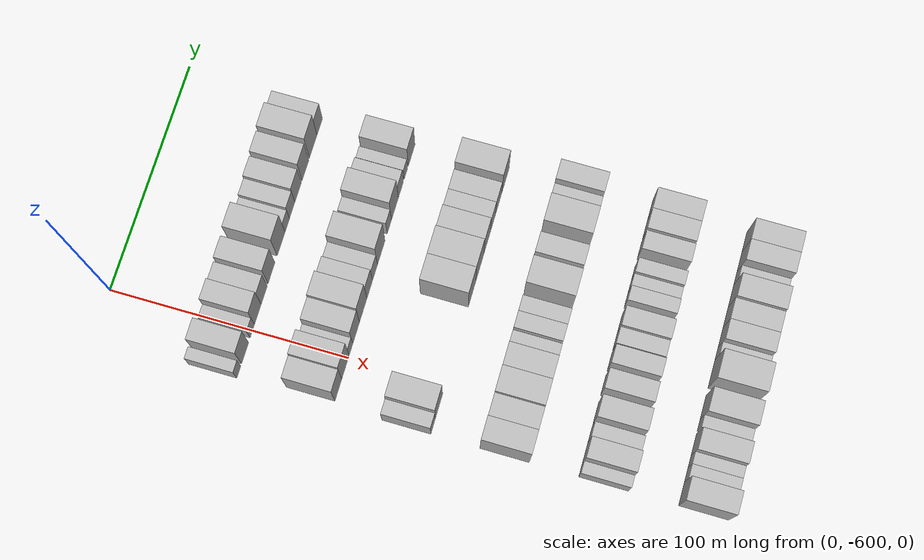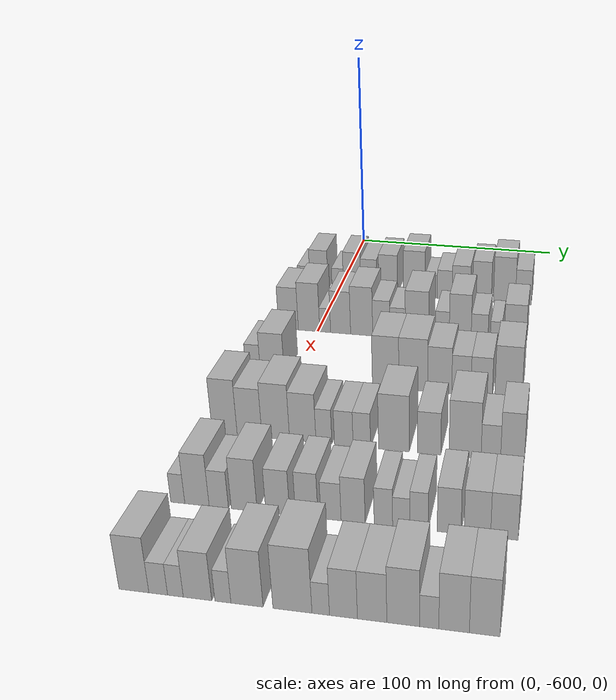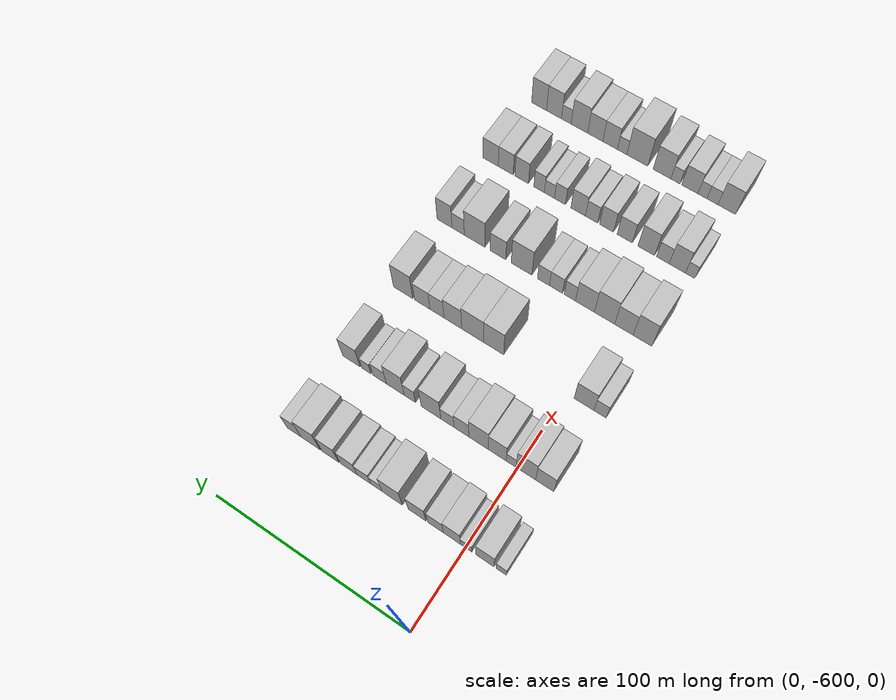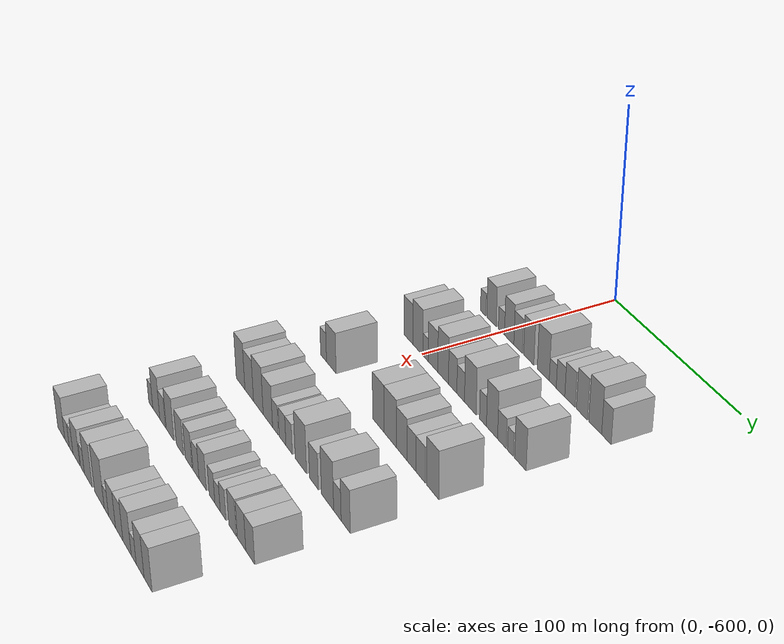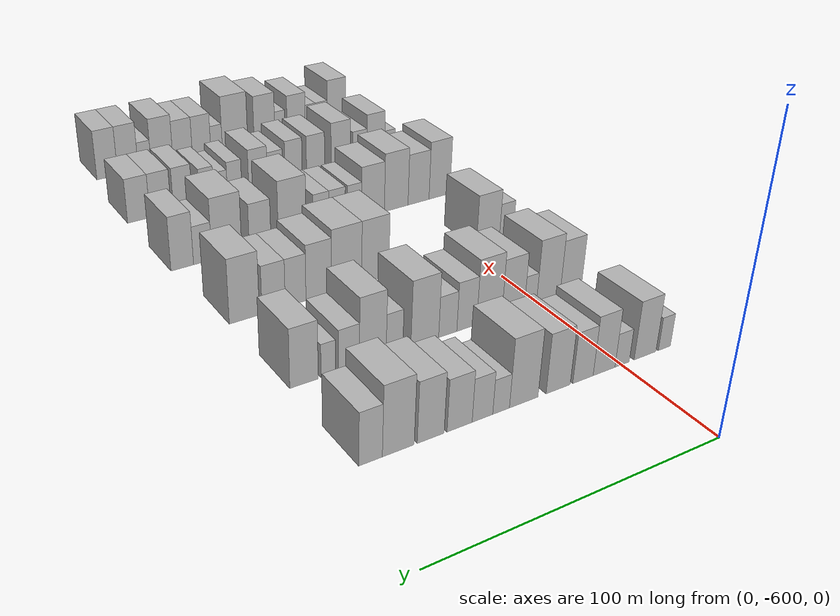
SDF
<sdf version="1.6">
 <world name="default">
  <model name="building_1">
   <static>1</static>
   <pose>50.0000 -617.4939 0 0.000000 0.000000 0.000000</pose>
   <link name="link">
    <pose>0 0 6.00 0 0 0</pose>
    <collision name="collision"><geometry><box><size>20.0000 5.0123 12.0000</size></box></geometry></collision>
    <visual name="visual">
     <cast_shadows>0</cast_shadows>
     <geometry><box><size>20.0000 5.0123 12.0000</size></box></geometry>
     <material>
      <script>
       <uri>model://HANNAS_wall/materials/scripts</uri>
       <uri>model://HANNAS_wall/materials/textures</uri>
       <name>vrc/HANNAS_wall</name>
      </script>
     </material>
    </visual>
   </link>
  </model>
  <model name="building_2">
   <static>1</static>
   <pose>50.0000 -609.5214 0 0.000000 0.000000 0.000000</pose>
   <link name="link">
    <pose>0 0 10.50 0 0 0</pose>
    <collision name="collision"><geometry><box><size>20.0000 8.9326 21.0000</size></box></geometry></collision>
    <visual name="visual">
     <cast_shadows>0</cast_shadows>
     <geometry><box><size>20.0000 8.9326 21.0000</size></box></geometry>
     <material>
      <script>
       <uri>model://HANNAS_wall/materials/scripts</uri>
       <uri>model://HANNAS_wall/materials/textures</uri>
       <name>vrc/HANNAS_wall</name>
      </script>
     </material>
    </visual>
   </link>
  </model>
  <model name="building_3">
   <static>1</static>
   <pose>50.0000 -600.2050 0 0.000000 0.000000 0.000000</pose>
   <link name="link">
    <pose>0 0 6.00 0 0 0</pose>
    <collision name="collision"><geometry><box><size>20.0000 5.7003 12.0000</size></box></geometry></collision>
    <visual name="visual">
     <cast_shadows>0</cast_shadows>
     <geometry><box><size>20.0000 5.7003 12.0000</size></box></geometry>
     <material>
      <script>
       <uri>model://HANNAS_wall/materials/scripts</uri>
       <uri>model://HANNAS_wall/materials/textures</uri>
       <name>vrc/HANNAS_wall</name>
      </script>
     </material>
    </visual>
   </link>
  </model>
  <model name="building_4">
   <static>1</static>
   <pose>50.0000 -593.0694 0 0.000000 0.000000 0.000000</pose>
   <link name="link">
    <pose>0 0 10.50 0 0 0</pose>
    <collision name="collision"><geometry><box><size>20.0000 8.5710 21.0000</size></box></geometry></collision>
    <visual name="visual">
     <cast_shadows>0</cast_shadows>
     <geometry><box><size>20.0000 8.5710 21.0000</size></box></geometry>
     <material>
      <script>
       <uri>model://HANNAS_wall/materials/scripts</uri>
       <uri>model://HANNAS_wall/materials/textures</uri>
       <name>vrc/HANNAS_wall</name>
      </script>
     </material>
    </visual>
   </link>
  </model>
  <model name="building_5">
   <static>1</static>
   <pose>50.0000 -584.8639 0 0.000000 0.000000 0.000000</pose>
   <link name="link">
    <pose>0 0 9.00 0 0 0</pose>
    <collision name="collision"><geometry><box><size>20.0000 7.8400 18.0000</size></box></geometry></collision>
    <visual name="visual">
     <cast_shadows>0</cast_shadows>
     <geometry><box><size>20.0000 7.8400 18.0000</size></box></geometry>
     <material>
      <script>
       <uri>model://HANNAS_wall/materials/scripts</uri>
       <uri>model://HANNAS_wall/materials/textures</uri>
       <name>vrc/HANNAS_wall</name>
      </script>
     </material>
    </visual>
   </link>
  </model>
  <model name="building_6">
   <static>1</static>
   <pose>50.0000 -575.4095 0 0.000000 0.000000 0.000000</pose>
   <link name="link">
    <pose>0 0 10.50 0 0 0</pose>
    <collision name="collision"><geometry><box><size>20.0000 9.0687 21.0000</size></box></geometry></collision>
    <visual name="visual">
     <cast_shadows>0</cast_shadows>
     <geometry><box><size>20.0000 9.0687 21.0000</size></box></geometry>
     <material>
      <script>
       <uri>model://HANNAS_wall/materials/scripts</uri>
       <uri>model://HANNAS_wall/materials/textures</uri>
       <name>vrc/HANNAS_wall</name>
      </script>
     </material>
    </visual>
   </link>
  </model>
  <model name="building_7">
   <static>1</static>
   <pose>50.0000 -562.6782 0 0.000000 0.000000 0.000000</pose>
   <link name="link">
    <pose>0 0 12.00 0 0 0</pose>
    <collision name="collision"><geometry><box><size>20.0000 10.3939 24.0000</size></box></geometry></collision>
    <visual name="visual">
     <cast_shadows>0</cast_shadows>
     <geometry><box><size>20.0000 10.3939 24.0000</size></box></geometry>
     <material>
      <script>
       <uri>model://HANNAS_wall/materials/scripts</uri>
       <uri>model://HANNAS_wall/materials/textures</uri>
       <name>vrc/HANNAS_wall</name>
      </script>
     </material>
    </visual>
   </link>
  </model>
  <model name="building_8">
   <static>1</static>
   <pose>50.0000 -554.5004 0 0.000000 0.000000 0.000000</pose>
   <link name="link">
    <pose>0 0 6.00 0 0 0</pose>
    <collision name="collision"><geometry><box><size>20.0000 5.9615 12.0000</size></box></geometry></collision>
    <visual name="visual">
     <cast_shadows>0</cast_shadows>
     <geometry><box><size>20.0000 5.9615 12.0000</size></box></geometry>
     <material>
      <script>
       <uri>model://HANNAS_wall/materials/scripts</uri>
       <uri>model://HANNAS_wall/materials/textures</uri>
       <name>vrc/HANNAS_wall</name>
      </script>
     </material>
    </visual>
   </link>
  </model>
  <model name="building_9">
   <static>1</static>
   <pose>50.0000 -547.9078 0 0.000000 0.000000 0.000000</pose>
   <link name="link">
    <pose>0 0 7.50 0 0 0</pose>
    <collision name="collision"><geometry><box><size>20.0000 7.2238 15.0000</size></box></geometry></collision>
    <visual name="visual">
     <cast_shadows>0</cast_shadows>
     <geometry><box><size>20.0000 7.2238 15.0000</size></box></geometry>
     <material>
      <script>
       <uri>model://HANNAS_wall/materials/scripts</uri>
       <uri>model://HANNAS_wall/materials/textures</uri>
       <name>vrc/HANNAS_wall</name>
      </script>
     </material>
    </visual>
   </link>
  </model>
  <model name="building_10">
   <static>1</static>
   <pose>50.0000 -539.9835 0 0.000000 0.000000 0.000000</pose>
   <link name="link">
    <pose>0 0 9.00 0 0 0</pose>
    <collision name="collision"><geometry><box><size>20.0000 8.6247 18.0000</size></box></geometry></collision>
    <visual name="visual">
     <cast_shadows>0</cast_shadows>
     <geometry><box><size>20.0000 8.6247 18.0000</size></box></geometry>
     <material>
      <script>
       <uri>model://HANNAS_wall/materials/scripts</uri>
       <uri>model://HANNAS_wall/materials/textures</uri>
       <name>vrc/HANNAS_wall</name>
      </script>
     </material>
    </visual>
   </link>
  </model>
  <model name="building_11">
   <static>1</static>
   <pose>50.0000 -530.1715 0 0.000000 0.000000 0.000000</pose>
   <link name="link">
    <pose>0 0 10.50 0 0 0</pose>
    <collision name="collision"><geometry><box><size>20.0000 8.9995 21.0000</size></box></geometry></collision>
    <visual name="visual">
     <cast_shadows>0</cast_shadows>
     <geometry><box><size>20.0000 8.9995 21.0000</size></box></geometry>
     <material>
      <script>
       <uri>model://HANNAS_wall/materials/scripts</uri>
       <uri>model://HANNAS_wall/materials/textures</uri>
       <name>vrc/HANNAS_wall</name>
      </script>
     </material>
    </visual>
   </link>
  </model>
  <model name="building_12">
   <static>1</static>
   <pose>50.0000 -519.4981 0 0.000000 0.000000 0.000000</pose>
   <link name="link">
    <pose>0 0 12.00 0 0 0</pose>
    <collision name="collision"><geometry><box><size>20.0000 10.3472 24.0000</size></box></geometry></collision>
    <visual name="visual">
     <cast_shadows>0</cast_shadows>
     <geometry><box><size>20.0000 10.3472 24.0000</size></box></geometry>
     <material>
      <script>
       <uri>model://HANNAS_wall/materials/scripts</uri>
       <uri>model://HANNAS_wall/materials/textures</uri>
       <name>vrc/HANNAS_wall</name>
      </script>
     </material>
    </visual>
   </link>
  </model>
  <model name="building_13">
   <static>1</static>
   <pose>50.0000 -510.5609 0 0.000000 0.000000 0.000000</pose>
   <link name="link">
    <pose>0 0 9.00 0 0 0</pose>
    <collision name="collision"><geometry><box><size>20.0000 7.5273 18.0000</size></box></geometry></collision>
    <visual name="visual">
     <cast_shadows>0</cast_shadows>
     <geometry><box><size>20.0000 7.5273 18.0000</size></box></geometry>
     <material>
      <script>
       <uri>model://HANNAS_wall/materials/scripts</uri>
       <uri>model://HANNAS_wall/materials/textures</uri>
       <name>vrc/HANNAS_wall</name>
      </script>
     </material>
    </visual>
   </link>
  </model>
  <model name="building_145">
   <static>1</static>
   <pose>90.0000 -613.4440 0 0.000000 0.000000 0.000000</pose>
   <link name="link">
    <pose>0 0 10.50 0 0 0</pose>
    <collision name="collision"><geometry><box><size>20.0000 9.1120 21.0000</size></box></geometry></collision>
    <visual name="visual">
     <cast_shadows>0</cast_shadows>
     <geometry><box><size>20.0000 9.1120 21.0000</size></box></geometry>
     <material>
      <script>
       <uri>model://HANNAS_wall/materials/scripts</uri>
       <uri>model://HANNAS_wall/materials/textures</uri>
       <name>vrc/HANNAS_wall</name>
      </script>
     </material>
    </visual>
   </link>
  </model>
  <model name="building_146">
   <static>1</static>
   <pose>90.0000 -603.9384 0 0.000000 0.000000 0.000000</pose>
   <link name="link">
    <pose>0 0 12.00 0 0 0</pose>
    <collision name="collision"><geometry><box><size>20.0000 9.8993 24.0000</size></box></geometry></collision>
    <visual name="visual">
     <cast_shadows>0</cast_shadows>
     <geometry><box><size>20.0000 9.8993 24.0000</size></box></geometry>
     <material>
      <script>
       <uri>model://HANNAS_wall/materials/scripts</uri>
       <uri>model://HANNAS_wall/materials/textures</uri>
       <name>vrc/HANNAS_wall</name>
      </script>
     </material>
    </visual>
   </link>
  </model>
  <model name="building_147">
   <static>1</static>
   <pose>90.0000 -596.4948 0 0.000000 0.000000 0.000000</pose>
   <link name="link">
    <pose>0 0 6.00 0 0 0</pose>
    <collision name="collision"><geometry><box><size>20.0000 4.9878 12.0000</size></box></geometry></collision>
    <visual name="visual">
     <cast_shadows>0</cast_shadows>
     <geometry><box><size>20.0000 4.9878 12.0000</size></box></geometry>
     <material>
      <script>
       <uri>model://HANNAS_wall/materials/scripts</uri>
       <uri>model://HANNAS_wall/materials/textures</uri>
       <name>vrc/HANNAS_wall</name>
      </script>
     </material>
    </visual>
   </link>
  </model>
  <model name="building_148">
   <static>1</static>
   <pose>90.0000 -589.4309 0 0.000000 0.000000 0.000000</pose>
   <link name="link">
    <pose>0 0 10.50 0 0 0</pose>
    <collision name="collision"><geometry><box><size>20.0000 9.1400 21.0000</size></box></geometry></collision>
    <visual name="visual">
     <cast_shadows>0</cast_shadows>
     <geometry><box><size>20.0000 9.1400 21.0000</size></box></geometry>
     <material>
      <script>
       <uri>model://HANNAS_wall/materials/scripts</uri>
       <uri>model://HANNAS_wall/materials/textures</uri>
       <name>vrc/HANNAS_wall</name>
      </script>
     </material>
    </visual>
   </link>
  </model>
  <model name="building_149">
   <static>1</static>
   <pose>90.0000 -579.8406 0 0.000000 0.000000 0.000000</pose>
   <link name="link">
    <pose>0 0 12.00 0 0 0</pose>
    <collision name="collision"><geometry><box><size>20.0000 10.0407 24.0000</size></box></geometry></collision>
    <visual name="visual">
     <cast_shadows>0</cast_shadows>
     <geometry><box><size>20.0000 10.0407 24.0000</size></box></geometry>
     <material>
      <script>
       <uri>model://HANNAS_wall/materials/scripts</uri>
       <uri>model://HANNAS_wall/materials/textures</uri>
       <name>vrc/HANNAS_wall</name>
      </script>
     </material>
    </visual>
   </link>
  </model>
  <model name="building_150">
   <static>1</static>
   <pose>90.0000 -570.9561 0 0.000000 0.000000 0.000000</pose>
   <link name="link">
    <pose>0 0 9.00 0 0 0</pose>
    <collision name="collision"><geometry><box><size>20.0000 7.7282 18.0000</size></box></geometry></collision>
    <visual name="visual">
     <cast_shadows>0</cast_shadows>
     <geometry><box><size>20.0000 7.7282 18.0000</size></box></geometry>
     <material>
      <script>
       <uri>model://HANNAS_wall/materials/scripts</uri>
       <uri>model://HANNAS_wall/materials/textures</uri>
       <name>vrc/HANNAS_wall</name>
      </script>
     </material>
    </visual>
   </link>
  </model>
  <model name="building_151">
   <static>1</static>
   <pose>90.0000 -563.6088 0 0.000000 0.000000 0.000000</pose>
   <link name="link">
    <pose>0 0 7.50 0 0 0</pose>
    <collision name="collision"><geometry><box><size>20.0000 6.9663 15.0000</size></box></geometry></collision>
    <visual name="visual">
     <cast_shadows>0</cast_shadows>
     <geometry><box><size>20.0000 6.9663 15.0000</size></box></geometry>
     <material>
      <script>
       <uri>model://HANNAS_wall/materials/scripts</uri>
       <uri>model://HANNAS_wall/materials/textures</uri>
       <name>vrc/HANNAS_wall</name>
      </script>
     </material>
    </visual>
   </link>
  </model>
  <model name="building_152">
   <static>1</static>
   <pose>90.0000 -554.9083 0 0.000000 0.000000 0.000000</pose>
   <link name="link">
    <pose>0 0 12.00 0 0 0</pose>
    <collision name="collision"><geometry><box><size>20.0000 10.4348 24.0000</size></box></geometry></collision>
    <visual name="visual">
     <cast_shadows>0</cast_shadows>
     <geometry><box><size>20.0000 10.4348 24.0000</size></box></geometry>
     <material>
      <script>
       <uri>model://HANNAS_wall/materials/scripts</uri>
       <uri>model://HANNAS_wall/materials/textures</uri>
       <name>vrc/HANNAS_wall</name>
      </script>
     </material>
    </visual>
   </link>
  </model>
  <model name="building_153">
   <static>1</static>
   <pose>90.0000 -543.6479 0 0.000000 0.000000 0.000000</pose>
   <link name="link">
    <pose>0 0 7.50 0 0 0</pose>
    <collision name="collision"><geometry><box><size>20.0000 6.0859 15.0000</size></box></geometry></collision>
    <visual name="visual">
     <cast_shadows>0</cast_shadows>
     <geometry><box><size>20.0000 6.0859 15.0000</size></box></geometry>
     <material>
      <script>
       <uri>model://HANNAS_wall/materials/scripts</uri>
       <uri>model://HANNAS_wall/materials/textures</uri>
       <name>vrc/HANNAS_wall</name>
      </script>
     </material>
    </visual>
   </link>
  </model>
  <model name="building_154">
   <static>1</static>
   <pose>90.0000 -535.7948 0 0.000000 0.000000 0.000000</pose>
   <link name="link">
    <pose>0 0 12.00 0 0 0</pose>
    <collision name="collision"><geometry><box><size>20.0000 9.6202 24.0000</size></box></geometry></collision>
    <visual name="visual">
     <cast_shadows>0</cast_shadows>
     <geometry><box><size>20.0000 9.6202 24.0000</size></box></geometry>
     <material>
      <script>
       <uri>model://HANNAS_wall/materials/scripts</uri>
       <uri>model://HANNAS_wall/materials/textures</uri>
       <name>vrc/HANNAS_wall</name>
      </script>
     </material>
    </visual>
   </link>
  </model>
  <model name="building_155">
   <static>1</static>
   <pose>90.0000 -527.2983 0 0.000000 0.000000 0.000000</pose>
   <link name="link">
    <pose>0 0 7.50 0 0 0</pose>
    <collision name="collision"><geometry><box><size>20.0000 7.3729 15.0000</size></box></geometry></collision>
    <visual name="visual">
     <cast_shadows>0</cast_shadows>
     <geometry><box><size>20.0000 7.3729 15.0000</size></box></geometry>
     <material>
      <script>
       <uri>model://HANNAS_wall/materials/scripts</uri>
       <uri>model://HANNAS_wall/materials/textures</uri>
       <name>vrc/HANNAS_wall</name>
      </script>
     </material>
    </visual>
   </link>
  </model>
  <model name="building_156">
   <static>1</static>
   <pose>90.0000 -520.1170 0 0.000000 0.000000 0.000000</pose>
   <link name="link">
    <pose>0 0 6.00 0 0 0</pose>
    <collision name="collision"><geometry><box><size>20.0000 4.9897 12.0000</size></box></geometry></collision>
    <visual name="visual">
     <cast_shadows>0</cast_shadows>
     <geometry><box><size>20.0000 4.9897 12.0000</size></box></geometry>
     <material>
      <script>
       <uri>model://HANNAS_wall/materials/scripts</uri>
       <uri>model://HANNAS_wall/materials/textures</uri>
       <name>vrc/HANNAS_wall</name>
      </script>
     </material>
    </visual>
   </link>
  </model>
  <model name="building_157">
   <static>1</static>
   <pose>90.0000 -511.8347 0 0.000000 0.000000 0.000000</pose>
   <link name="link">
    <pose>0 0 10.50 0 0 0</pose>
    <collision name="collision"><geometry><box><size>20.0000 9.5747 21.0000</size></box></geometry></collision>
    <visual name="visual">
     <cast_shadows>0</cast_shadows>
     <geometry><box><size>20.0000 9.5747 21.0000</size></box></geometry>
     <material>
      <script>
       <uri>model://HANNAS_wall/materials/scripts</uri>
       <uri>model://HANNAS_wall/materials/textures</uri>
       <name>vrc/HANNAS_wall</name>
      </script>
     </material>
    </visual>
   </link>
  </model>
  <model name="building_282">
   <static>1</static>
   <pose>130.0000 -616.8885 0 0.000000 0.000000 0.000000</pose>
   <link name="link">
    <pose>0 0 7.50 0 0 0</pose>
    <collision name="collision"><geometry><box><size>20.0000 6.2229 15.0000</size></box></geometry></collision>
    <visual name="visual">
     <cast_shadows>0</cast_shadows>
     <geometry><box><size>20.0000 6.2229 15.0000</size></box></geometry>
     <material>
      <script>
       <uri>model://HANNAS_wall/materials/scripts</uri>
       <uri>model://HANNAS_wall/materials/textures</uri>
       <name>vrc/HANNAS_wall</name>
      </script>
     </material>
    </visual>
   </link>
  </model>
  <model name="building_283">
   <static>1</static>
   <pose>130.0000 -608.7078 0 0.000000 0.000000 0.000000</pose>
   <link name="link">
    <pose>0 0 10.50 0 0 0</pose>
    <collision name="collision"><geometry><box><size>20.0000 10.1385 21.0000</size></box></geometry></collision>
    <visual name="visual">
     <cast_shadows>0</cast_shadows>
     <geometry><box><size>20.0000 10.1385 21.0000</size></box></geometry>
     <material>
      <script>
       <uri>model://HANNAS_wall/materials/scripts</uri>
       <uri>model://HANNAS_wall/materials/textures</uri>
       <name>vrc/HANNAS_wall</name>
      </script>
     </material>
    </visual>
   </link>
  </model>
  <model name="building_284">
   <static>1</static>
   <pose>130.0000 -561.3183 0 0.000000 0.000000 0.000000</pose>
   <link name="link">
    <pose>0 0 12.00 0 0 0</pose>
    <collision name="collision"><geometry><box><size>20.0000 10.8802 24.0000</size></box></geometry></collision>
    <visual name="visual">
     <cast_shadows>0</cast_shadows>
     <geometry><box><size>20.0000 10.8802 24.0000</size></box></geometry>
     <material>
      <script>
       <uri>model://HANNAS_wall/materials/scripts</uri>
       <uri>model://HANNAS_wall/materials/textures</uri>
       <name>vrc/HANNAS_wall</name>
      </script>
     </material>
    </visual>
   </link>
  </model>
  <model name="building_285">
   <static>1</static>
   <pose>130.0000 -550.0125 0 0.000000 0.000000 0.000000</pose>
   <link name="link">
    <pose>0 0 12.00 0 0 0</pose>
    <collision name="collision"><geometry><box><size>20.0000 11.7315 24.0000</size></box></geometry></collision>
    <visual name="visual">
     <cast_shadows>0</cast_shadows>
     <geometry><box><size>20.0000 11.7315 24.0000</size></box></geometry>
     <material>
      <script>
       <uri>model://HANNAS_wall/materials/scripts</uri>
       <uri>model://HANNAS_wall/materials/textures</uri>
       <name>vrc/HANNAS_wall</name>
      </script>
     </material>
    </visual>
   </link>
  </model>
  <model name="building_286">
   <static>1</static>
   <pose>130.0000 -539.2736 0 0.000000 0.000000 0.000000</pose>
   <link name="link">
    <pose>0 0 10.50 0 0 0</pose>
    <collision name="collision"><geometry><box><size>20.0000 9.7465 21.0000</size></box></geometry></collision>
    <visual name="visual">
     <cast_shadows>0</cast_shadows>
     <geometry><box><size>20.0000 9.7465 21.0000</size></box></geometry>
     <material>
      <script>
       <uri>model://HANNAS_wall/materials/scripts</uri>
       <uri>model://HANNAS_wall/materials/textures</uri>
       <name>vrc/HANNAS_wall</name>
      </script>
     </material>
    </visual>
   </link>
  </model>
  <model name="building_287">
   <static>1</static>
   <pose>130.0000 -530.5337 0 0.000000 0.000000 0.000000</pose>
   <link name="link">
    <pose>0 0 9.00 0 0 0</pose>
    <collision name="collision"><geometry><box><size>20.0000 7.7333 18.0000</size></box></geometry></collision>
    <visual name="visual">
     <cast_shadows>0</cast_shadows>
     <geometry><box><size>20.0000 7.7333 18.0000</size></box></geometry>
     <material>
      <script>
       <uri>model://HANNAS_wall/materials/scripts</uri>
       <uri>model://HANNAS_wall/materials/textures</uri>
       <name>vrc/HANNAS_wall</name>
      </script>
     </material>
    </visual>
   </link>
  </model>
  <model name="building_288">
   <static>1</static>
   <pose>130.0000 -522.4168 0 0.000000 0.000000 0.000000</pose>
   <link name="link">
    <pose>0 0 9.00 0 0 0</pose>
    <collision name="collision"><geometry><box><size>20.0000 8.5005 18.0000</size></box></geometry></collision>
    <visual name="visual">
     <cast_shadows>0</cast_shadows>
     <geometry><box><size>20.0000 8.5005 18.0000</size></box></geometry>
     <material>
      <script>
       <uri>model://HANNAS_wall/materials/scripts</uri>
       <uri>model://HANNAS_wall/materials/textures</uri>
       <name>vrc/HANNAS_wall</name>
      </script>
     </material>
    </visual>
   </link>
  </model>
  <model name="building_289">
   <static>1</static>
   <pose>130.0000 -511.7700 0 0.000000 0.000000 0.000000</pose>
   <link name="link">
    <pose>0 0 12.00 0 0 0</pose>
    <collision name="collision"><geometry><box><size>20.0000 10.7929 24.0000</size></box></geometry></collision>
    <visual name="visual">
     <cast_shadows>0</cast_shadows>
     <geometry><box><size>20.0000 10.7929 24.0000</size></box></geometry>
     <material>
      <script>
       <uri>model://HANNAS_wall/materials/scripts</uri>
       <uri>model://HANNAS_wall/materials/textures</uri>
       <name>vrc/HANNAS_wall</name>
      </script>
     </material>
    </visual>
   </link>
  </model>
  <model name="building_410">
   <static>1</static>
   <pose>170.0000 -615.1223 0 0.000000 0.000000 0.000000</pose>
   <link name="link">
    <pose>0 0 12.00 0 0 0</pose>
    <collision name="collision"><geometry><box><size>20.0000 9.7554 24.0000</size></box></geometry></collision>
    <visual name="visual">
     <cast_shadows>0</cast_shadows>
     <geometry><box><size>20.0000 9.7554 24.0000</size></box></geometry>
     <material>
      <script>
       <uri>model://HANNAS_wall/materials/scripts</uri>
       <uri>model://HANNAS_wall/materials/textures</uri>
       <name>vrc/HANNAS_wall</name>
      </script>
     </material>
    </visual>
   </link>
  </model>
  <model name="building_411">
   <static>1</static>
   <pose>170.0000 -605.4306 0 0.000000 0.000000 0.000000</pose>
   <link name="link">
    <pose>0 0 10.50 0 0 0</pose>
    <collision name="collision"><geometry><box><size>20.0000 9.6279 21.0000</size></box></geometry></collision>
    <visual name="visual">
     <cast_shadows>0</cast_shadows>
     <geometry><box><size>20.0000 9.6279 21.0000</size></box></geometry>
     <material>
      <script>
       <uri>model://HANNAS_wall/materials/scripts</uri>
       <uri>model://HANNAS_wall/materials/textures</uri>
       <name>vrc/HANNAS_wall</name>
      </script>
     </material>
    </visual>
   </link>
  </model>
  <model name="building_412">
   <static>1</static>
   <pose>170.0000 -595.2949 0 0.000000 0.000000 0.000000</pose>
   <link name="link">
    <pose>0 0 12.00 0 0 0</pose>
    <collision name="collision"><geometry><box><size>20.0000 10.6435 24.0000</size></box></geometry></collision>
    <visual name="visual">
     <cast_shadows>0</cast_shadows>
     <geometry><box><size>20.0000 10.6435 24.0000</size></box></geometry>
     <material>
      <script>
       <uri>model://HANNAS_wall/materials/scripts</uri>
       <uri>model://HANNAS_wall/materials/textures</uri>
       <name>vrc/HANNAS_wall</name>
      </script>
     </material>
    </visual>
   </link>
  </model>
  <model name="building_413">
   <static>1</static>
   <pose>170.0000 -584.9388 0 0.000000 0.000000 0.000000</pose>
   <link name="link">
    <pose>0 0 10.50 0 0 0</pose>
    <collision name="collision"><geometry><box><size>20.0000 10.0687 21.0000</size></box></geometry></collision>
    <visual name="visual">
     <cast_shadows>0</cast_shadows>
     <geometry><box><size>20.0000 10.0687 21.0000</size></box></geometry>
     <material>
      <script>
       <uri>model://HANNAS_wall/materials/scripts</uri>
       <uri>model://HANNAS_wall/materials/textures</uri>
       <name>vrc/HANNAS_wall</name>
      </script>
     </material>
    </visual>
   </link>
  </model>
  <model name="building_414">
   <static>1</static>
   <pose>170.0000 -576.8933 0 0.000000 0.000000 0.000000</pose>
   <link name="link">
    <pose>0 0 7.50 0 0 0</pose>
    <collision name="collision"><geometry><box><size>20.0000 6.0223 15.0000</size></box></geometry></collision>
    <visual name="visual">
     <cast_shadows>0</cast_shadows>
     <geometry><box><size>20.0000 6.0223 15.0000</size></box></geometry>
     <material>
      <script>
       <uri>model://HANNAS_wall/materials/scripts</uri>
       <uri>model://HANNAS_wall/materials/textures</uri>
       <name>vrc/HANNAS_wall</name>
      </script>
     </material>
    </visual>
   </link>
  </model>
  <model name="building_415">
   <static>1</static>
   <pose>170.0000 -569.3808 0 0.000000 0.000000 0.000000</pose>
   <link name="link">
    <pose>0 0 7.50 0 0 0</pose>
    <collision name="collision"><geometry><box><size>20.0000 7.0026 15.0000</size></box></geometry></collision>
    <visual name="visual">
     <cast_shadows>0</cast_shadows>
     <geometry><box><size>20.0000 7.0026 15.0000</size></box></geometry>
     <material>
      <script>
       <uri>model://HANNAS_wall/materials/scripts</uri>
       <uri>model://HANNAS_wall/materials/textures</uri>
       <name>vrc/HANNAS_wall</name>
      </script>
     </material>
    </visual>
   </link>
  </model>
  <model name="building_416">
   <static>1</static>
   <pose>170.0000 -562.5997 0 0.000000 0.000000 0.000000</pose>
   <link name="link">
    <pose>0 0 7.50 0 0 0</pose>
    <collision name="collision"><geometry><box><size>20.0000 6.5597 15.0000</size></box></geometry></collision>
    <visual name="visual">
     <cast_shadows>0</cast_shadows>
     <geometry><box><size>20.0000 6.5597 15.0000</size></box></geometry>
     <material>
      <script>
       <uri>model://HANNAS_wall/materials/scripts</uri>
       <uri>model://HANNAS_wall/materials/textures</uri>
       <name>vrc/HANNAS_wall</name>
      </script>
     </material>
    </visual>
   </link>
  </model>
  <model name="building_417">
   <static>1</static>
   <pose>170.0000 -550.6372 0 0.000000 0.000000 0.000000</pose>
   <link name="link">
    <pose>0 0 12.00 0 0 0</pose>
    <collision name="collision"><geometry><box><size>20.0000 11.3653 24.0000</size></box></geometry></collision>
    <visual name="visual">
     <cast_shadows>0</cast_shadows>
     <geometry><box><size>20.0000 11.3653 24.0000</size></box></geometry>
     <material>
      <script>
       <uri>model://HANNAS_wall/materials/scripts</uri>
       <uri>model://HANNAS_wall/materials/textures</uri>
       <name>vrc/HANNAS_wall</name>
      </script>
     </material>
    </visual>
   </link>
  </model>
  <model name="building_418">
   <static>1</static>
   <pose>170.0000 -537.6403 0 0.000000 0.000000 0.000000</pose>
   <link name="link">
    <pose>0 0 9.00 0 0 0</pose>
    <collision name="collision"><geometry><box><size>20.0000 8.6284 18.0000</size></box></geometry></collision>
    <visual name="visual">
     <cast_shadows>0</cast_shadows>
     <geometry><box><size>20.0000 8.6284 18.0000</size></box></geometry>
     <material>
      <script>
       <uri>model://HANNAS_wall/materials/scripts</uri>
       <uri>model://HANNAS_wall/materials/textures</uri>
       <name>vrc/HANNAS_wall</name>
      </script>
     </material>
    </visual>
   </link>
  </model>
  <model name="building_419">
   <static>1</static>
   <pose>170.0000 -524.5130 0 0.000000 0.000000 0.000000</pose>
   <link name="link">
    <pose>0 0 12.00 0 0 0</pose>
    <collision name="collision"><geometry><box><size>20.0000 11.6263 24.0000</size></box></geometry></collision>
    <visual name="visual">
     <cast_shadows>0</cast_shadows>
     <geometry><box><size>20.0000 11.6263 24.0000</size></box></geometry>
     <material>
      <script>
       <uri>model://HANNAS_wall/materials/scripts</uri>
       <uri>model://HANNAS_wall/materials/textures</uri>
       <name>vrc/HANNAS_wall</name>
      </script>
     </material>
    </visual>
   </link>
  </model>
  <model name="building_420">
   <static>1</static>
   <pose>170.0000 -515.1902 0 0.000000 0.000000 0.000000</pose>
   <link name="link">
    <pose>0 0 7.50 0 0 0</pose>
    <collision name="collision"><geometry><box><size>20.0000 7.0193 15.0000</size></box></geometry></collision>
    <visual name="visual">
     <cast_shadows>0</cast_shadows>
     <geometry><box><size>20.0000 7.0193 15.0000</size></box></geometry>
     <material>
      <script>
       <uri>model://HANNAS_wall/materials/scripts</uri>
       <uri>model://HANNAS_wall/materials/textures</uri>
       <name>vrc/HANNAS_wall</name>
      </script>
     </material>
    </visual>
   </link>
  </model>
  <model name="building_421">
   <static>1</static>
   <pose>170.0000 -507.4368 0 0.000000 0.000000 0.000000</pose>
   <link name="link">
    <pose>0 0 10.50 0 0 0</pose>
    <collision name="collision"><geometry><box><size>20.0000 8.4874 21.0000</size></box></geometry></collision>
    <visual name="visual">
     <cast_shadows>0</cast_shadows>
     <geometry><box><size>20.0000 8.4874 21.0000</size></box></geometry>
     <material>
      <script>
       <uri>model://HANNAS_wall/materials/scripts</uri>
       <uri>model://HANNAS_wall/materials/textures</uri>
       <name>vrc/HANNAS_wall</name>
      </script>
     </material>
    </visual>
   </link>
  </model>
  <model name="building_553">
   <static>1</static>
   <pose>210.0000 -617.5113 0 0.000000 0.000000 0.000000</pose>
   <link name="link">
    <pose>0 0 6.00 0 0 0</pose>
    <collision name="collision"><geometry><box><size>20.0000 4.9774 12.0000</size></box></geometry></collision>
    <visual name="visual">
     <cast_shadows>0</cast_shadows>
     <geometry><box><size>20.0000 4.9774 12.0000</size></box></geometry>
     <material>
      <script>
       <uri>model://HANNAS_wall/materials/scripts</uri>
       <uri>model://HANNAS_wall/materials/textures</uri>
       <name>vrc/HANNAS_wall</name>
      </script>
     </material>
    </visual>
   </link>
  </model>
  <model name="building_554">
   <static>1</static>
   <pose>210.0000 -610.7302 0 0.000000 0.000000 0.000000</pose>
   <link name="link">
    <pose>0 0 10.50 0 0 0</pose>
    <collision name="collision"><geometry><box><size>20.0000 8.5847 21.0000</size></box></geometry></collision>
    <visual name="visual">
     <cast_shadows>0</cast_shadows>
     <geometry><box><size>20.0000 8.5847 21.0000</size></box></geometry>
     <material>
      <script>
       <uri>model://HANNAS_wall/materials/scripts</uri>
       <uri>model://HANNAS_wall/materials/textures</uri>
       <name>vrc/HANNAS_wall</name>
      </script>
     </material>
    </visual>
   </link>
  </model>
  <model name="building_555">
   <static>1</static>
   <pose>210.0000 -603.0597 0 0.000000 0.000000 0.000000</pose>
   <link name="link">
    <pose>0 0 7.50 0 0 0</pose>
    <collision name="collision"><geometry><box><size>20.0000 6.7563 15.0000</size></box></geometry></collision>
    <visual name="visual">
     <cast_shadows>0</cast_shadows>
     <geometry><box><size>20.0000 6.7563 15.0000</size></box></geometry>
     <material>
      <script>
       <uri>model://HANNAS_wall/materials/scripts</uri>
       <uri>model://HANNAS_wall/materials/textures</uri>
       <name>vrc/HANNAS_wall</name>
      </script>
     </material>
    </visual>
   </link>
  </model>
  <model name="building_556">
   <static>1</static>
   <pose>210.0000 -594.1864 0 0.000000 0.000000 0.000000</pose>
   <link name="link">
    <pose>0 0 10.50 0 0 0</pose>
    <collision name="collision"><geometry><box><size>20.0000 8.9903 21.0000</size></box></geometry></collision>
    <visual name="visual">
     <cast_shadows>0</cast_shadows>
     <geometry><box><size>20.0000 8.9903 21.0000</size></box></geometry>
     <material>
      <script>
       <uri>model://HANNAS_wall/materials/scripts</uri>
       <uri>model://HANNAS_wall/materials/textures</uri>
       <name>vrc/HANNAS_wall</name>
      </script>
     </material>
    </visual>
   </link>
  </model>
  <model name="building_557">
   <static>1</static>
   <pose>210.0000 -582.5769 0 0.000000 0.000000 0.000000</pose>
   <link name="link">
    <pose>0 0 9.00 0 0 0</pose>
    <collision name="collision"><geometry><box><size>20.0000 8.2287 18.0000</size></box></geometry></collision>
    <visual name="visual">
     <cast_shadows>0</cast_shadows>
     <geometry><box><size>20.0000 8.2287 18.0000</size></box></geometry>
     <material>
      <script>
       <uri>model://HANNAS_wall/materials/scripts</uri>
       <uri>model://HANNAS_wall/materials/textures</uri>
       <name>vrc/HANNAS_wall</name>
      </script>
     </material>
    </visual>
   </link>
  </model>
  <model name="building_558">
   <static>1</static>
   <pose>210.0000 -572.6315 0 0.000000 0.000000 0.000000</pose>
   <link name="link">
    <pose>0 0 9.00 0 0 0</pose>
    <collision name="collision"><geometry><box><size>20.0000 7.6621 18.0000</size></box></geometry></collision>
    <visual name="visual">
     <cast_shadows>0</cast_shadows>
     <geometry><box><size>20.0000 7.6621 18.0000</size></box></geometry>
     <material>
      <script>
       <uri>model://HANNAS_wall/materials/scripts</uri>
       <uri>model://HANNAS_wall/materials/textures</uri>
       <name>vrc/HANNAS_wall</name>
      </script>
     </material>
    </visual>
   </link>
  </model>
  <model name="building_559">
   <static>1</static>
   <pose>210.0000 -564.3929 0 0.000000 0.000000 0.000000</pose>
   <link name="link">
    <pose>0 0 7.50 0 0 0</pose>
    <collision name="collision"><geometry><box><size>20.0000 6.8152 15.0000</size></box></geometry></collision>
    <visual name="visual">
     <cast_shadows>0</cast_shadows>
     <geometry><box><size>20.0000 6.8152 15.0000</size></box></geometry>
     <material>
      <script>
       <uri>model://HANNAS_wall/materials/scripts</uri>
       <uri>model://HANNAS_wall/materials/textures</uri>
       <name>vrc/HANNAS_wall</name>
      </script>
     </material>
    </visual>
   </link>
  </model>
  <model name="building_560">
   <static>1</static>
   <pose>210.0000 -556.9374 0 0.000000 0.000000 0.000000</pose>
   <link name="link">
    <pose>0 0 9.00 0 0 0</pose>
    <collision name="collision"><geometry><box><size>20.0000 8.0957 18.0000</size></box></geometry></collision>
    <visual name="visual">
     <cast_shadows>0</cast_shadows>
     <geometry><box><size>20.0000 8.0957 18.0000</size></box></geometry>
     <material>
      <script>
       <uri>model://HANNAS_wall/materials/scripts</uri>
       <uri>model://HANNAS_wall/materials/textures</uri>
       <name>vrc/HANNAS_wall</name>
      </script>
     </material>
    </visual>
   </link>
  </model>
  <model name="building_561">
   <static>1</static>
   <pose>210.0000 -546.8164 0 0.000000 0.000000 0.000000</pose>
   <link name="link">
    <pose>0 0 7.50 0 0 0</pose>
    <collision name="collision"><geometry><box><size>20.0000 6.1462 15.0000</size></box></geometry></collision>
    <visual name="visual">
     <cast_shadows>0</cast_shadows>
     <geometry><box><size>20.0000 6.1462 15.0000</size></box></geometry>
     <material>
      <script>
       <uri>model://HANNAS_wall/materials/scripts</uri>
       <uri>model://HANNAS_wall/materials/textures</uri>
       <name>vrc/HANNAS_wall</name>
      </script>
     </material>
    </visual>
   </link>
  </model>
  <model name="building_562">
   <static>1</static>
   <pose>210.0000 -540.8880 0 0.000000 0.000000 0.000000</pose>
   <link name="link">
    <pose>0 0 6.00 0 0 0</pose>
    <collision name="collision"><geometry><box><size>20.0000 5.7106 12.0000</size></box></geometry></collision>
    <visual name="visual">
     <cast_shadows>0</cast_shadows>
     <geometry><box><size>20.0000 5.7106 12.0000</size></box></geometry>
     <material>
      <script>
       <uri>model://HANNAS_wall/materials/scripts</uri>
       <uri>model://HANNAS_wall/materials/textures</uri>
       <name>vrc/HANNAS_wall</name>
      </script>
     </material>
    </visual>
   </link>
  </model>
  <model name="building_563">
   <static>1</static>
   <pose>210.0000 -535.0291 0 0.000000 0.000000 0.000000</pose>
   <link name="link">
    <pose>0 0 7.50 0 0 0</pose>
    <collision name="collision"><geometry><box><size>20.0000 6.0074 15.0000</size></box></geometry></collision>
    <visual name="visual">
     <cast_shadows>0</cast_shadows>
     <geometry><box><size>20.0000 6.0074 15.0000</size></box></geometry>
     <material>
      <script>
       <uri>model://HANNAS_wall/materials/scripts</uri>
       <uri>model://HANNAS_wall/materials/textures</uri>
       <name>vrc/HANNAS_wall</name>
      </script>
     </material>
    </visual>
   </link>
  </model>
  <model name="building_564">
   <static>1</static>
   <pose>210.0000 -525.1403 0 0.000000 0.000000 0.000000</pose>
   <link name="link">
    <pose>0 0 9.00 0 0 0</pose>
    <collision name="collision"><geometry><box><size>20.0000 7.7702 18.0000</size></box></geometry></collision>
    <visual name="visual">
     <cast_shadows>0</cast_shadows>
     <geometry><box><size>20.0000 7.7702 18.0000</size></box></geometry>
     <material>
      <script>
       <uri>model://HANNAS_wall/materials/scripts</uri>
       <uri>model://HANNAS_wall/materials/textures</uri>
       <name>vrc/HANNAS_wall</name>
      </script>
     </material>
    </visual>
   </link>
  </model>
  <model name="building_565">
   <static>1</static>
   <pose>210.0000 -515.9727 0 0.000000 0.000000 0.000000</pose>
   <link name="link">
    <pose>0 0 9.00 0 0 0</pose>
    <collision name="collision"><geometry><box><size>20.0000 8.5649 18.0000</size></box></geometry></collision>
    <visual name="visual">
     <cast_shadows>0</cast_shadows>
     <geometry><box><size>20.0000 8.5649 18.0000</size></box></geometry>
     <material>
      <script>
       <uri>model://HANNAS_wall/materials/scripts</uri>
       <uri>model://HANNAS_wall/materials/textures</uri>
       <name>vrc/HANNAS_wall</name>
      </script>
     </material>
    </visual>
   </link>
  </model>
  <model name="building_566">
   <static>1</static>
   <pose>210.0000 -507.2654 0 0.000000 0.000000 0.000000</pose>
   <link name="link">
    <pose>0 0 9.00 0 0 0</pose>
    <collision name="collision"><geometry><box><size>20.0000 8.8497 18.0000</size></box></geometry></collision>
    <visual name="visual">
     <cast_shadows>0</cast_shadows>
     <geometry><box><size>20.0000 8.8497 18.0000</size></box></geometry>
     <material>
      <script>
       <uri>model://HANNAS_wall/materials/scripts</uri>
       <uri>model://HANNAS_wall/materials/textures</uri>
       <name>vrc/HANNAS_wall</name>
      </script>
     </material>
    </visual>
   </link>
  </model>
  <model name="building_687">
   <static>1</static>
   <pose>250.0000 -615.2629 0 0.000000 0.000000 0.000000</pose>
   <link name="link">
    <pose>0 0 10.50 0 0 0</pose>
    <collision name="collision"><geometry><box><size>20.0000 9.4742 21.0000</size></box></geometry></collision>
    <visual name="visual">
     <cast_shadows>0</cast_shadows>
     <geometry><box><size>20.0000 9.4742 21.0000</size></box></geometry>
     <material>
      <script>
       <uri>model://HANNAS_wall/materials/scripts</uri>
       <uri>model://HANNAS_wall/materials/textures</uri>
       <name>vrc/HANNAS_wall</name>
      </script>
     </material>
    </visual>
   </link>
  </model>
  <model name="building_688">
   <static>1</static>
   <pose>250.0000 -607.5752 0 0.000000 0.000000 0.000000</pose>
   <link name="link">
    <pose>0 0 6.00 0 0 0</pose>
    <collision name="collision"><geometry><box><size>20.0000 5.9011 12.0000</size></box></geometry></collision>
    <visual name="visual">
     <cast_shadows>0</cast_shadows>
     <geometry><box><size>20.0000 5.9011 12.0000</size></box></geometry>
     <material>
      <script>
       <uri>model://HANNAS_wall/materials/scripts</uri>
       <uri>model://HANNAS_wall/materials/textures</uri>
       <name>vrc/HANNAS_wall</name>
      </script>
     </material>
    </visual>
   </link>
  </model>
  <model name="building_689">
   <static>1</static>
   <pose>250.0000 -602.1684 0 0.000000 0.000000 0.000000</pose>
   <link name="link">
    <pose>0 0 6.00 0 0 0</pose>
    <collision name="collision"><geometry><box><size>20.0000 4.9125 12.0000</size></box></geometry></collision>
    <visual name="visual">
     <cast_shadows>0</cast_shadows>
     <geometry><box><size>20.0000 4.9125 12.0000</size></box></geometry>
     <material>
      <script>
       <uri>model://HANNAS_wall/materials/scripts</uri>
       <uri>model://HANNAS_wall/materials/textures</uri>
       <name>vrc/HANNAS_wall</name>
      </script>
     </material>
    </visual>
   </link>
  </model>
  <model name="building_690">
   <static>1</static>
   <pose>250.0000 -595.2899 0 0.000000 0.000000 0.000000</pose>
   <link name="link">
    <pose>0 0 9.00 0 0 0</pose>
    <collision name="collision"><geometry><box><size>20.0000 8.8446 18.0000</size></box></geometry></collision>
    <visual name="visual">
     <cast_shadows>0</cast_shadows>
     <geometry><box><size>20.0000 8.8446 18.0000</size></box></geometry>
     <material>
      <script>
       <uri>model://HANNAS_wall/materials/scripts</uri>
       <uri>model://HANNAS_wall/materials/textures</uri>
       <name>vrc/HANNAS_wall</name>
      </script>
     </material>
    </visual>
   </link>
  </model>
  <model name="building_691">
   <static>1</static>
   <pose>250.0000 -587.4037 0 0.000000 0.000000 0.000000</pose>
   <link name="link">
    <pose>0 0 6.00 0 0 0</pose>
    <collision name="collision"><geometry><box><size>20.0000 4.9279 12.0000</size></box></geometry></collision>
    <visual name="visual">
     <cast_shadows>0</cast_shadows>
     <geometry><box><size>20.0000 4.9279 12.0000</size></box></geometry>
     <material>
      <script>
       <uri>model://HANNAS_wall/materials/scripts</uri>
       <uri>model://HANNAS_wall/materials/textures</uri>
       <name>vrc/HANNAS_wall</name>
      </script>
     </material>
    </visual>
   </link>
  </model>
  <model name="building_692">
   <static>1</static>
   <pose>250.0000 -580.0148 0 0.000000 0.000000 0.000000</pose>
   <link name="link">
    <pose>0 0 10.50 0 0 0</pose>
    <collision name="collision"><geometry><box><size>20.0000 9.8499 21.0000</size></box></geometry></collision>
    <visual name="visual">
     <cast_shadows>0</cast_shadows>
     <geometry><box><size>20.0000 9.8499 21.0000</size></box></geometry>
     <material>
      <script>
       <uri>model://HANNAS_wall/materials/scripts</uri>
       <uri>model://HANNAS_wall/materials/textures</uri>
       <name>vrc/HANNAS_wall</name>
      </script>
     </material>
    </visual>
   </link>
  </model>
  <model name="building_693">
   <static>1</static>
   <pose>250.0000 -566.1904 0 0.000000 0.000000 0.000000</pose>
   <link name="link">
    <pose>0 0 12.00 0 0 0</pose>
    <collision name="collision"><geometry><box><size>20.0000 11.7988 24.0000</size></box></geometry></collision>
    <visual name="visual">
     <cast_shadows>0</cast_shadows>
     <geometry><box><size>20.0000 11.7988 24.0000</size></box></geometry>
     <material>
      <script>
       <uri>model://HANNAS_wall/materials/scripts</uri>
       <uri>model://HANNAS_wall/materials/textures</uri>
       <name>vrc/HANNAS_wall</name>
      </script>
     </material>
    </visual>
   </link>
  </model>
  <model name="building_694">
   <static>1</static>
   <pose>250.0000 -557.6708 0 0.000000 0.000000 0.000000</pose>
   <link name="link">
    <pose>0 0 6.00 0 0 0</pose>
    <collision name="collision"><geometry><box><size>20.0000 5.2404 12.0000</size></box></geometry></collision>
    <visual name="visual">
     <cast_shadows>0</cast_shadows>
     <geometry><box><size>20.0000 5.2404 12.0000</size></box></geometry>
     <material>
      <script>
       <uri>model://HANNAS_wall/materials/scripts</uri>
       <uri>model://HANNAS_wall/materials/textures</uri>
       <name>vrc/HANNAS_wall</name>
      </script>
     </material>
    </visual>
   </link>
  </model>
  <model name="building_695">
   <static>1</static>
   <pose>250.0000 -550.8947 0 0.000000 0.000000 0.000000</pose>
   <link name="link">
    <pose>0 0 9.00 0 0 0</pose>
    <collision name="collision"><geometry><box><size>20.0000 8.3118 18.0000</size></box></geometry></collision>
    <visual name="visual">
     <cast_shadows>0</cast_shadows>
     <geometry><box><size>20.0000 8.3118 18.0000</size></box></geometry>
     <material>
      <script>
       <uri>model://HANNAS_wall/materials/scripts</uri>
       <uri>model://HANNAS_wall/materials/textures</uri>
       <name>vrc/HANNAS_wall</name>
      </script>
     </material>
    </visual>
   </link>
  </model>
  <model name="building_696">
   <static>1</static>
   <pose>250.0000 -542.4034 0 0.000000 0.000000 0.000000</pose>
   <link name="link">
    <pose>0 0 9.00 0 0 0</pose>
    <collision name="collision"><geometry><box><size>20.0000 8.6710 18.0000</size></box></geometry></collision>
    <visual name="visual">
     <cast_shadows>0</cast_shadows>
     <geometry><box><size>20.0000 8.6710 18.0000</size></box></geometry>
     <material>
      <script>
       <uri>model://HANNAS_wall/materials/scripts</uri>
       <uri>model://HANNAS_wall/materials/textures</uri>
       <name>vrc/HANNAS_wall</name>
      </script>
     </material>
    </visual>
   </link>
  </model>
  <model name="building_697">
   <static>1</static>
   <pose>250.0000 -533.2902 0 0.000000 0.000000 0.000000</pose>
   <link name="link">
    <pose>0 0 10.50 0 0 0</pose>
    <collision name="collision"><geometry><box><size>20.0000 9.5554 21.0000</size></box></geometry></collision>
    <visual name="visual">
     <cast_shadows>0</cast_shadows>
     <geometry><box><size>20.0000 9.5554 21.0000</size></box></geometry>
     <material>
      <script>
       <uri>model://HANNAS_wall/materials/scripts</uri>
       <uri>model://HANNAS_wall/materials/textures</uri>
       <name>vrc/HANNAS_wall</name>
      </script>
     </material>
    </visual>
   </link>
  </model>
  <model name="building_698">
   <static>1</static>
   <pose>250.0000 -525.7261 0 0.000000 0.000000 0.000000</pose>
   <link name="link">
    <pose>0 0 6.00 0 0 0</pose>
    <collision name="collision"><geometry><box><size>20.0000 5.5728 12.0000</size></box></geometry></collision>
    <visual name="visual">
     <cast_shadows>0</cast_shadows>
     <geometry><box><size>20.0000 5.5728 12.0000</size></box></geometry>
     <material>
      <script>
       <uri>model://HANNAS_wall/materials/scripts</uri>
       <uri>model://HANNAS_wall/materials/textures</uri>
       <name>vrc/HANNAS_wall</name>
      </script>
     </material>
    </visual>
   </link>
  </model>
  <model name="building_699">
   <static>1</static>
   <pose>250.0000 -518.5515 0 0.000000 0.000000 0.000000</pose>
   <link name="link">
    <pose>0 0 10.50 0 0 0</pose>
    <collision name="collision"><geometry><box><size>20.0000 8.7763 21.0000</size></box></geometry></collision>
    <visual name="visual">
     <cast_shadows>0</cast_shadows>
     <geometry><box><size>20.0000 8.7763 21.0000</size></box></geometry>
     <material>
      <script>
       <uri>model://HANNAS_wall/materials/scripts</uri>
       <uri>model://HANNAS_wall/materials/textures</uri>
       <name>vrc/HANNAS_wall</name>
      </script>
     </material>
    </visual>
   </link>
  </model>
  <model name="building_700">
   <static>1</static>
   <pose>250.0000 -509.7956 0 0.000000 0.000000 0.000000</pose>
   <link name="link">
    <pose>0 0 10.50 0 0 0</pose>
    <collision name="collision"><geometry><box><size>20.0000 8.7355 21.0000</size></box></geometry></collision>
    <visual name="visual">
     <cast_shadows>0</cast_shadows>
     <geometry><box><size>20.0000 8.7355 21.0000</size></box></geometry>
     <material>
      <script>
       <uri>model://HANNAS_wall/materials/scripts</uri>
       <uri>model://HANNAS_wall/materials/textures</uri>
       <name>vrc/HANNAS_wall</name>
      </script>
     </material>
    </visual>
   </link>
  </model>
 </world>
</sdf>
